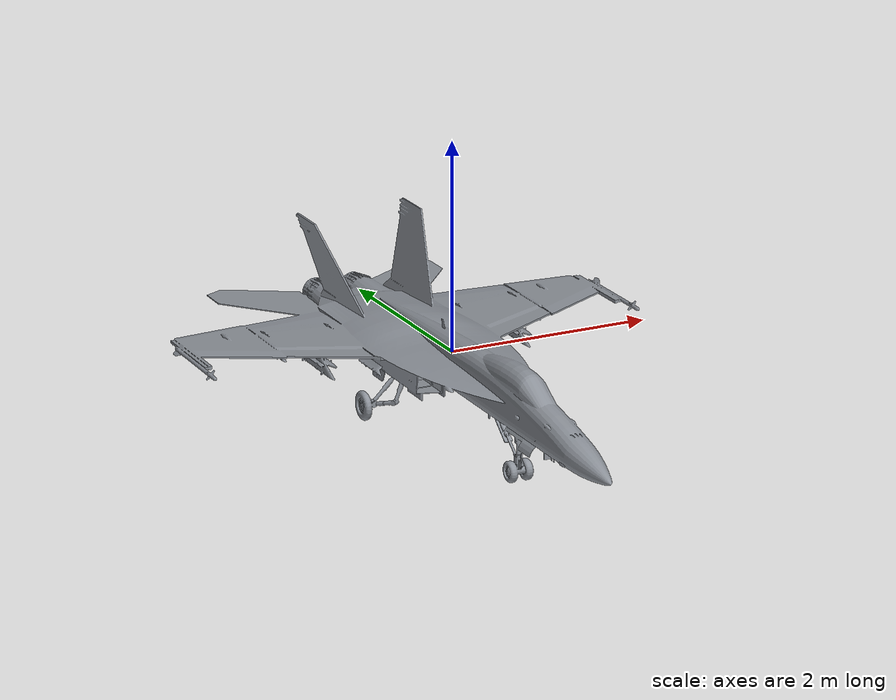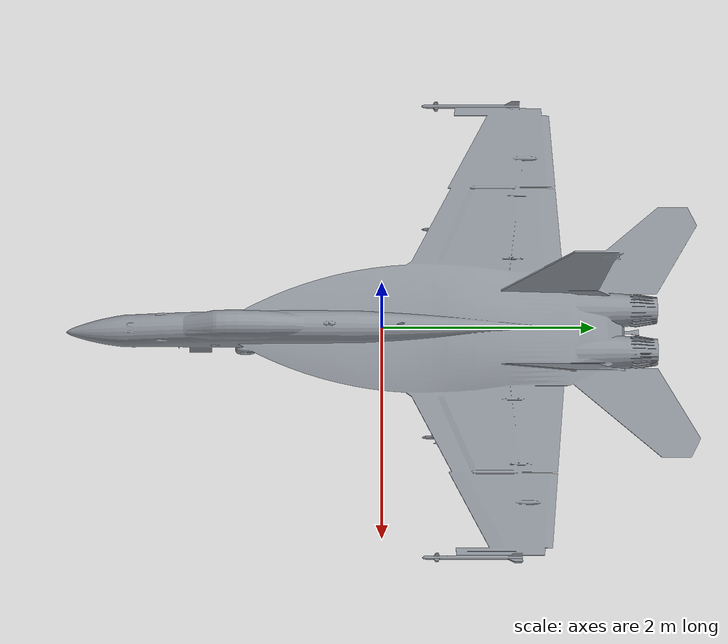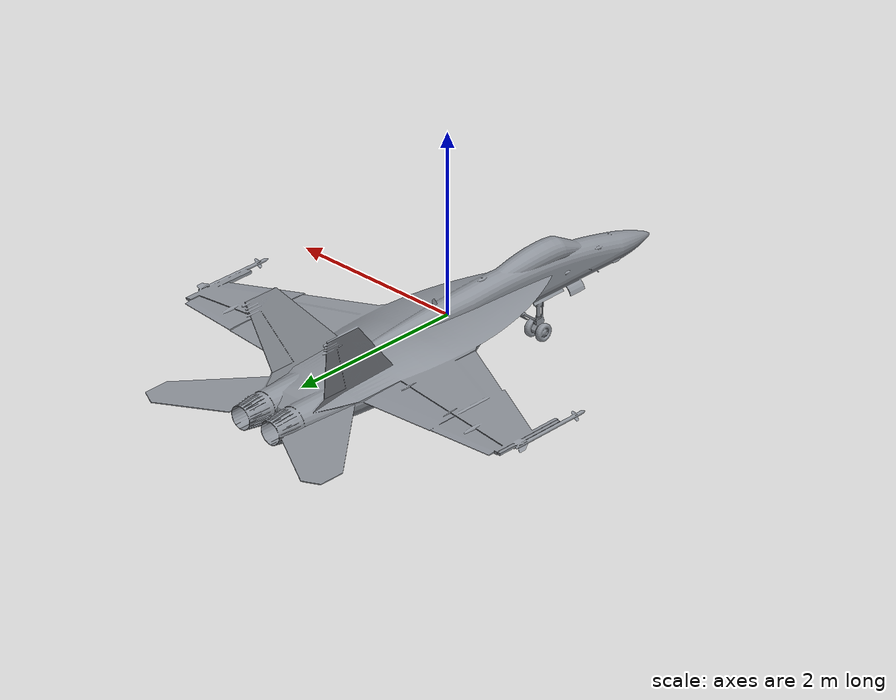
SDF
<?xml version="1.0"?>
<sdf version="1.9">
  <model name="plane">
    <static>false</static>
    <link name="body">
      <gravity>false</gravity><kinematic>true</kinematic>
      <inertial><mass>1.0</mass><inertia><ixx>0.05</ixx><iyy>0.05</iyy><izz>0.05</izz>
        <ixy>0</ixy><ixz>0</ixz><iyz>0</iyz></inertia></inertial>
      <visual name="visual">
        <geometry><mesh><uri>package://drone_sim/meshes/plane.stl</uri></mesh></geometry>
        <material><ambient>0.45 0.47 0.50 1</ambient><diffuse>0.55 0.57 0.60 1</diffuse></material>
      </visual>
      <collision name="collision"><geometry><box><size>4.4 6.0 1.6</size></box></geometry></collision>
    </link>
  </model>
</sdf>
